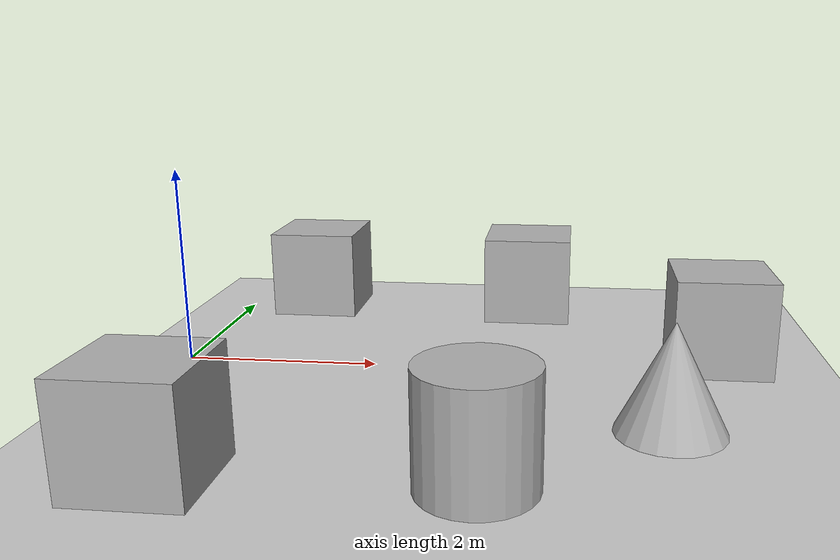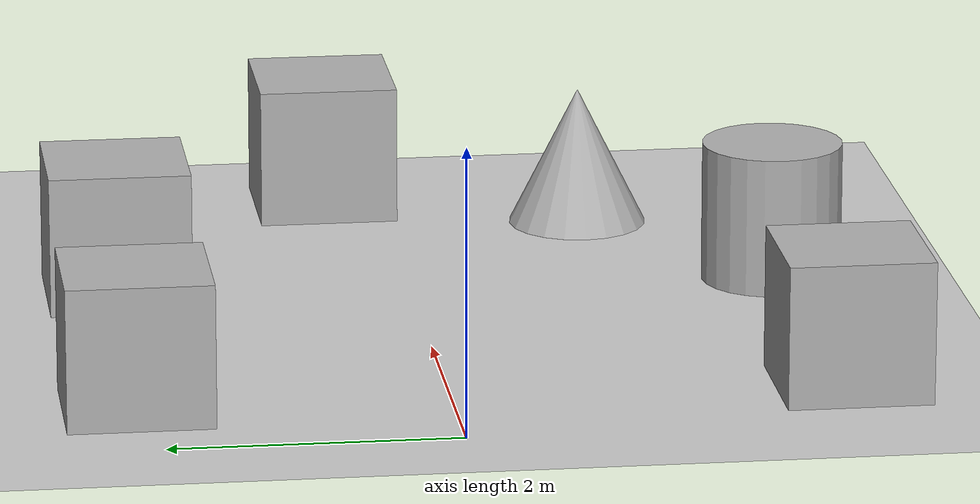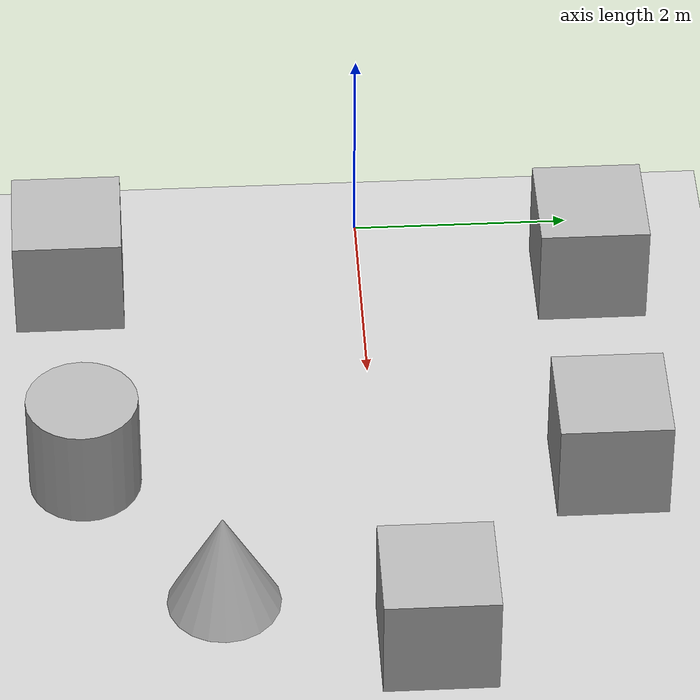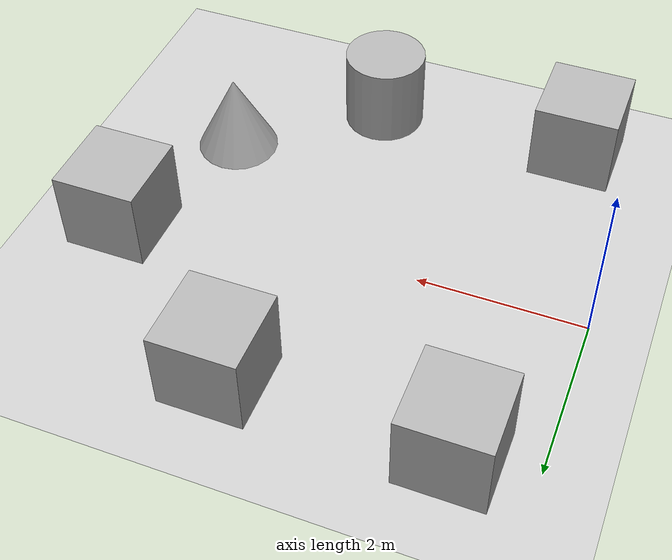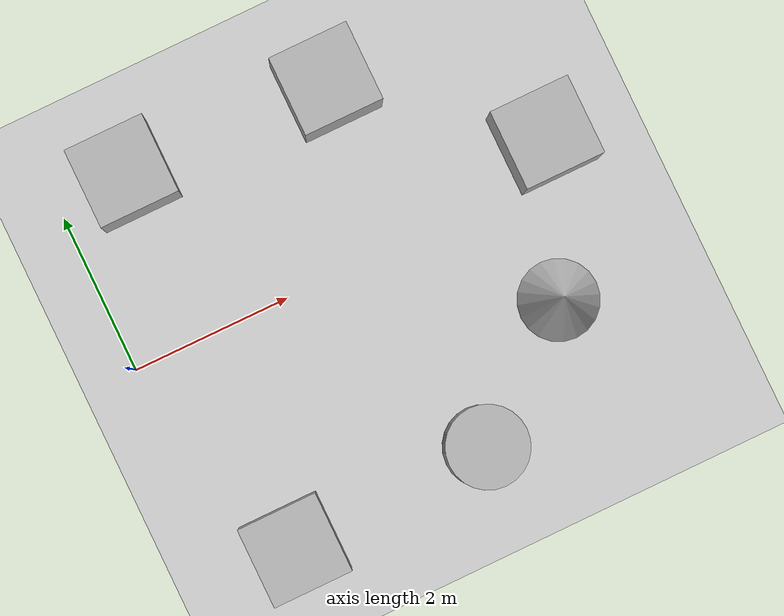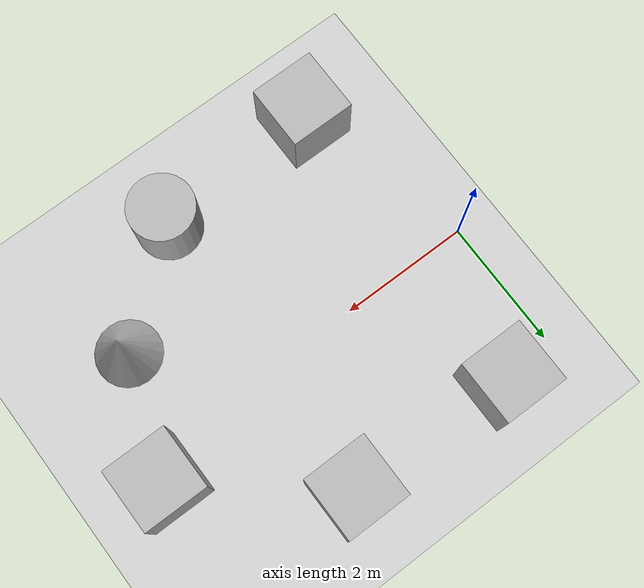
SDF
<sdf version='1.10'>
  <world name='empty'>
    <physics name='1ms' type='ignored'>
      <max_step_size>0.001</max_step_size>
      <real_time_factor>1</real_time_factor>
      <real_time_update_rate>1000</real_time_update_rate>
    </physics>
    <plugin name='gz::sim::systems::Physics' filename='gz-sim-physics-system'/>
    <plugin name='gz::sim::systems::UserCommands' filename='gz-sim-user-commands-system'/>
    <plugin name='gz::sim::systems::SceneBroadcaster' filename='gz-sim-scene-broadcaster-system'/>
    <plugin name='gz::sim::systems::Contact' filename='gz-sim-contact-system'/>
    <gravity>0 0 -9.8000000000000007</gravity>
    <magnetic_field>5.5644999999999998e-06 2.2875799999999999e-05 -4.2388400000000002e-05</magnetic_field>
    <atmosphere type='adiabatic'/>
    <scene>
      <ambient>0.400000006 0.400000006 0.400000006 1</ambient>
      <background>0.699999988 0.699999988 0.699999988 1</background>
      <shadows>true</shadows>
    </scene>
    <model name='ground_plane'>
      <static>true</static>
      <link name='link'>
        <collision name='collision'>
          <geometry>
            <plane>
              <normal>0 0 1</normal>
              <size>100 100</size>
            </plane>
          </geometry>
          <surface>
            <friction>
              <ode/>
            </friction>
            <bounce/>
            <contact/>
          </surface>
        </collision>
        <visual name='visual'>
          <geometry>
            <plane>
              <normal>0 0 1</normal>
              <size>100 100</size>
            </plane>
          </geometry>
          <material>
            <ambient>0.800000012 0.800000012 0.800000012 1</ambient>
            <diffuse>0.800000012 0.800000012 0.800000012 1</diffuse>
            <specular>0.800000012 0.800000012 0.800000012 1</specular>
          </material>
        </visual>
        <pose>0 0 0 0 0 0</pose>
        <inertial>
          <pose>0 0 0 0 0 0</pose>
          <mass>1</mass>
          <inertia>
            <ixx>1</ixx>
            <ixy>0</ixy>
            <ixz>0</ixz>
            <iyy>1</iyy>
            <iyz>0</iyz>
            <izz>1</izz>
          </inertia>
        </inertial>
        <enable_wind>false</enable_wind>
      </link>
      <pose>0 0 0 0 0 0</pose>
      <self_collide>false</self_collide>
    </model>
    <model name='box'>
      <pose>3.4967047432235105 2.0724645651029721 0.49999999990199806 6.2287739151293738e-22 9.3279666454713669e-22 -3.6315533669320137e-22</pose>
      <link name='box_link'>
        <inertial>
          <inertia>
            <ixx>0.16666</ixx>
            <ixy>0</ixy>
            <ixz>0</ixz>
            <iyy>0.16666</iyy>
            <iyz>0</iyz>
            <izz>0.16666</izz>
          </inertia>
          <mass>1</mass>
          <pose>0 0 0 0 0 0</pose>
        </inertial>
        <collision name='box_collision'>
          <geometry>
            <box>
              <size>1 1 1</size>
            </box>
          </geometry>
          <surface>
            <friction>
              <ode/>
            </friction>
            <bounce/>
            <contact/>
          </surface>
        </collision>
        <visual name='box_visual'>
          <geometry>
            <box>
              <size>1 1 1</size>
            </box>
          </geometry>
          <material>
            <ambient>0.300000012 0.300000012 0.300000012 1</ambient>
            <diffuse>0.699999988 0.699999988 0.699999988 1</diffuse>
            <specular>1 1 1 1</specular>
          </material>
        </visual>
        <pose>0 0 0 0 0 0</pose>
        <enable_wind>false</enable_wind>
      </link>
      <static>false</static>
      <self_collide>false</self_collide>
    </model>
    <model name='box_0'>
      <pose>5.5479179093176132 0.39600945802934406 0.49999999990199806 6.2287739151293738e-22 9.3279666454713669e-22 -3.6315533669320137e-22</pose>
      <link name='box_link'>
        <inertial>
          <inertia>
            <ixx>0.16666</ixx>
            <ixy>0</ixy>
            <ixz>0</ixz>
            <iyy>0.16666</iyy>
            <iyz>0</iyz>
            <izz>0.16666</izz>
          </inertia>
          <mass>1</mass>
          <pose>0 0 0 0 0 0</pose>
        </inertial>
        <collision name='box_collision'>
          <geometry>
            <box>
              <size>1 1 1</size>
            </box>
          </geometry>
          <surface>
            <friction>
              <ode/>
            </friction>
            <bounce/>
            <contact/>
          </surface>
        </collision>
        <visual name='box_visual'>
          <geometry>
            <box>
              <size>1 1 1</size>
            </box>
          </geometry>
          <material>
            <ambient>0.300000012 0.300000012 0.300000012 1</ambient>
            <diffuse>0.699999988 0.699999988 0.699999988 1</diffuse>
            <specular>1 1 1 1</specular>
          </material>
        </visual>
        <pose>0 0 0 0 0 0</pose>
        <enable_wind>false</enable_wind>
      </link>
      <static>false</static>
      <self_collide>false</self_collide>
    </model>
    <model name='cone'>
      <pose>4.8989576923388434 -1.4172710364227157 0.49999999993296756 5.254427032865594e-17 -7.7132841037428301e-10 -1.3782406032849548e-22</pose>
      <link name='cone_link'>
        <inertial>
          <inertia>
            <ixx>0.074999999999999997</ixx>
            <ixy>0</ixy>
            <ixz>0</ixz>
            <iyy>0.074999999999999997</iyy>
            <iyz>0</iyz>
            <izz>0.074999999999999997</izz>
          </inertia>
          <mass>1</mass>
          <pose>0 0 0 0 0 0</pose>
        </inertial>
        <collision name='cone_collision'>
          <geometry>
            <cone>
              <radius>0.5</radius>
              <length>1</length>
            </cone>
          </geometry>
          <surface>
            <friction>
              <ode/>
            </friction>
            <bounce/>
            <contact/>
          </surface>
        </collision>
        <visual name='cone_visual'>
          <geometry>
            <cone>
              <radius>0.5</radius>
              <length>1</length>
            </cone>
          </geometry>
          <material>
            <ambient>0.300000012 0.300000012 0.300000012 1</ambient>
            <diffuse>0.699999988 0.699999988 0.699999988 1</diffuse>
            <specular>1 1 1 1</specular>
          </material>
        </visual>
        <pose>0 0 0 0 0 0</pose>
        <enable_wind>false</enable_wind>
      </link>
      <static>false</static>
      <self_collide>false</self_collide>
    </model>
    <model name='cylinder'>
      <pose>3.3415926924997432 -2.6011920635428969 0.49999942638036005 2.953934080448402e-19 -2.649676108845121e-20 1.6590056018613708e-20</pose>
      <link name='cylinder_link'>
        <inertial>
          <inertia>
            <ixx>0.14580000000000001</ixx>
            <ixy>0</ixy>
            <ixz>0</ixz>
            <iyy>0.14580000000000001</iyy>
            <iyz>0</iyz>
            <izz>0.125</izz>
          </inertia>
          <mass>1</mass>
          <pose>0 0 0 0 0 0</pose>
        </inertial>
        <collision name='cylinder_collision'>
          <geometry>
            <cylinder>
              <radius>0.5</radius>
              <length>1</length>
            </cylinder>
          </geometry>
          <surface>
            <friction>
              <ode/>
            </friction>
            <bounce/>
            <contact/>
          </surface>
        </collision>
        <visual name='cylinder_visual'>
          <geometry>
            <cylinder>
              <radius>0.5</radius>
              <length>1</length>
            </cylinder>
          </geometry>
          <material>
            <ambient>0.300000012 0.300000012 0.300000012 1</ambient>
            <diffuse>0.699999988 0.699999988 0.699999988 1</diffuse>
            <specular>1 1 1 1</specular>
          </material>
        </visual>
        <pose>0 0 0 0 0 0</pose>
        <enable_wind>false</enable_wind>
      </link>
      <static>false</static>
      <self_collide>false</self_collide>
    </model>
    <model name='box_1'>
      <pose>0.88998628581499784 2.1293495484549689 0.49999999990199806 6.2287739151293738e-22 9.3279666454713669e-22 -3.6315533669320137e-22</pose>
      <link name='box_link'>
        <inertial>
          <inertia>
            <ixx>0.16666</ixx>
            <ixy>0</ixy>
            <ixz>0</ixz>
            <iyy>0.16666</iyy>
            <iyz>0</iyz>
            <izz>0.16666</izz>
          </inertia>
          <mass>1</mass>
          <pose>0 0 0 0 0 0</pose>
        </inertial>
        <collision name='box_collision'>
          <geometry>
            <box>
              <size>1 1 1</size>
            </box>
          </geometry>
          <surface>
            <friction>
              <ode/>
            </friction>
            <bounce/>
            <contact/>
          </surface>
        </collision>
        <visual name='box_visual'>
          <geometry>
            <box>
              <size>1 1 1</size>
            </box>
          </geometry>
          <material>
            <ambient>0.300000012 0.300000012 0.300000012 1</ambient>
            <diffuse>0.699999988 0.699999988 0.699999988 1</diffuse>
            <specular>1 1 1 1</specular>
          </material>
        </visual>
        <pose>0 0 0 0 0 0</pose>
        <enable_wind>false</enable_wind>
      </link>
      <static>false</static>
      <self_collide>false</self_collide>
    </model>
    <model name='box_2'>
      <pose>0.80664714877970844 -2.7128652959425881 0.49999999990199806 6.2287739151293738e-22 9.3279666454713669e-22 -3.6315533669320137e-22</pose>
      <link name='box_link'>
        <inertial>
          <inertia>
            <ixx>0.16666</ixx>
            <ixy>0</ixy>
            <ixz>0</ixz>
            <iyy>0.16666</iyy>
            <iyz>0</iyz>
            <izz>0.16666</izz>
          </inertia>
          <mass>1</mass>
          <pose>0 0 0 0 0 0</pose>
        </inertial>
        <collision name='box_collision'>
          <geometry>
            <box>
              <size>1 1 1</size>
            </box>
          </geometry>
          <surface>
            <friction>
              <ode/>
            </friction>
            <bounce/>
            <contact/>
          </surface>
        </collision>
        <visual name='box_visual'>
          <geometry>
            <box>
              <size>1 1 1</size>
            </box>
          </geometry>
          <material>
            <ambient>0.300000012 0.300000012 0.300000012 1</ambient>
            <diffuse>0.699999988 0.699999988 0.699999988 1</diffuse>
            <specular>1 1 1 1</specular>
          </material>
        </visual>
        <pose>0 0 0 0 0 0</pose>
        <enable_wind>false</enable_wind>
      </link>
      <static>false</static>
      <self_collide>false</self_collide>
    </model>
    <light name='sun' type='directional'>
      <pose>0 0 10 0 0 0</pose>
      <cast_shadows>true</cast_shadows>
      <intensity>1</intensity>
      <direction>-0.5 0.10000000000000001 -0.90000000000000002</direction>
      <diffuse>0.800000012 0.800000012 0.800000012 1</diffuse>
      <specular>0.200000003 0.200000003 0.200000003 1</specular>
      <attenuation>
        <range>1000</range>
        <linear>0.01</linear>
        <constant>0.90000000000000002</constant>
        <quadratic>0.001</quadratic>
      </attenuation>
      <spot>
        <inner_angle>0</inner_angle>
        <outer_angle>0</outer_angle>
        <falloff>0</falloff>
      </spot>
    </light>
  </world>
</sdf>
